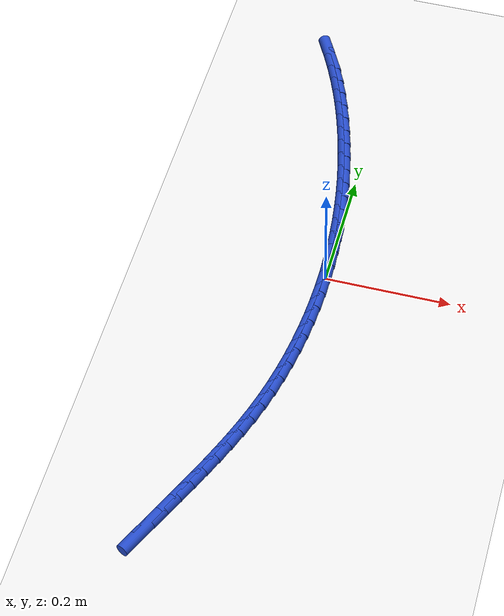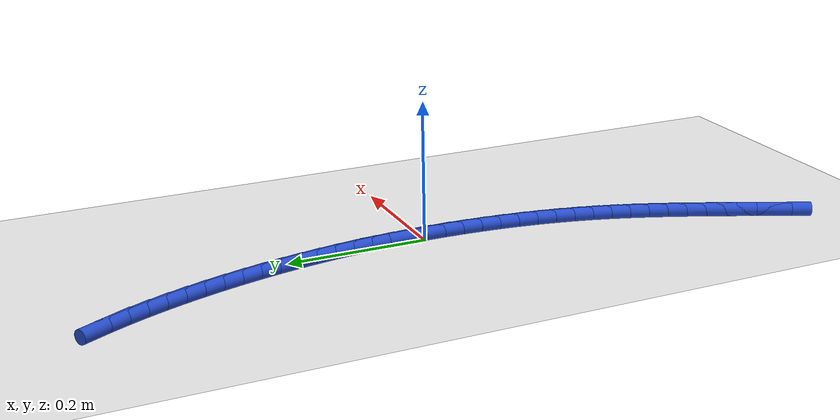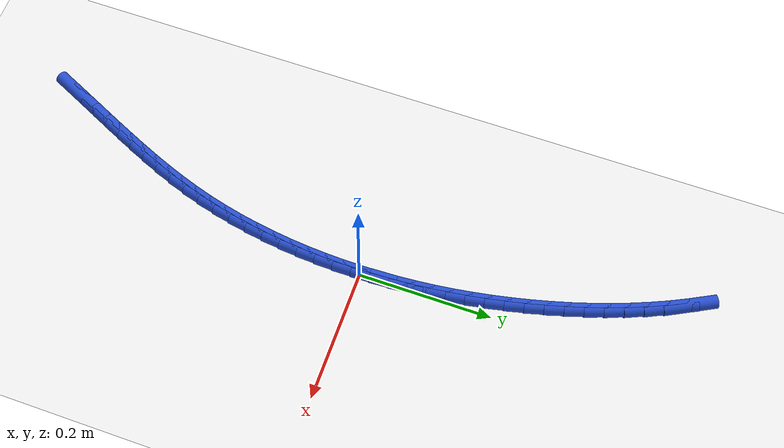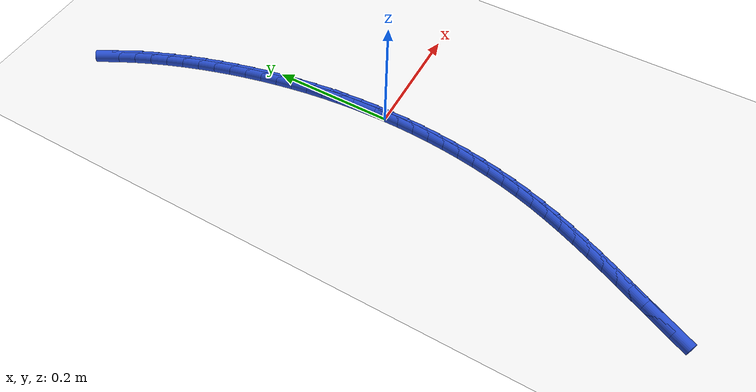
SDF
<sdf version="1.6">
 <world name="default">
  <model name="ground_plane">
   <static>1</static>
   <link name="link">
    <collision name="collision">
     <geometry><plane><normal>0 0 1</normal><size>100 100</size></plane></geometry>
     <surface><friction><ode><mu>100</mu><mu2>50</mu2></ode></friction></surface>
    </collision>
    <visual name="visual">
     <cast_shadows>0</cast_shadows>
     <geometry><plane><normal>0 0 1</normal><size>100 100</size></plane></geometry>
     <material>
      <script><uri>file://media/materials/scripts/gazebo.material</uri><name>Gazebo/WhiteGlow</name></script>
     </material>
    </visual>
   </link>
  </model>
  <model name="line">
   <link name="link_0">
    <pose>8.673617379884035e-18 -1.3877787807814457e-17 0.01 0 1.57 -1.5496870519016304</pose>
    <collision name="collision">
     <geometry><cylinder><radius>0.01</radius><length>0.08</length></cylinder></geometry>
    </collision>
    <visual name="visual">
     <material>
      <script><name>Gazebo/Blue</name><uri>file://media/materials/scripts/gazebo.material</uri></script>
     </material>
     <geometry><cylinder><radius>0.01</radius><length>0.08</length></cylinder></geometry>
    </visual>
   </link>
   <link name="link_1">
    <pose>-0.0005935820550612413 0.02811531369161037 0.01 0 1.57 -1.5225756263421197</pose>
    <collision name="collision">
     <geometry><cylinder><radius>0.01</radius><length>0.08</length></cylinder></geometry>
    </collision>
    <visual name="visual">
     <material>
      <script><name>Gazebo/Blue</name><uri>file://media/materials/scripts/gazebo.material</uri></script>
     </material>
     <geometry><cylinder><radius>0.01</radius><length>0.08</length></cylinder></geometry>
    </visual>
   </link>
   <link name="link_2">
    <pose>-0.0019466442927246717 0.05615334160720155 0.01 0 1.57 -1.4957126452156062</pose>
    <collision name="collision">
     <geometry><cylinder><radius>0.01</radius><length>0.08</length></cylinder></geometry>
    </collision>
    <visual name="visual">
     <material>
      <script><name>Gazebo/Blue</name><uri>file://media/materials/scripts/gazebo.material</uri></script>
     </material>
     <geometry><cylinder><radius>0.01</radius><length>0.08</length></cylinder></geometry>
    </visual>
   </link>
   <link name="link_3">
    <pose>-0.004049898525523837 0.08411281689671175 0.01 0 1.57 -1.4691324945821218</pose>
    <collision name="collision">
     <geometry><cylinder><radius>0.01</radius><length>0.08</length></cylinder></geometry>
    </collision>
    <visual name="visual">
     <material>
      <script><name>Gazebo/Blue</name><uri>file://media/materials/scripts/gazebo.material</uri></script>
     </material>
     <geometry><cylinder><radius>0.01</radius><length>0.08</length></cylinder></geometry>
    </visual>
   </link>
   <link name="link_4">
    <pose>-0.006894056565992287 0.11199247271007928 0.01 0 1.57 -1.4428672444223662</pose>
    <collision name="collision">
     <geometry><cylinder><radius>0.01</radius><length>0.08</length></cylinder></geometry>
    </collision>
    <visual name="visual">
     <material>
      <script><name>Gazebo/Blue</name><uri>file://media/materials/scripts/gazebo.material</uri></script>
     </material>
     <geometry><cylinder><radius>0.01</radius><length>0.08</length></cylinder></geometry>
    </visual>
   </link>
   <link name="link_5">
    <pose>-0.010469830226663578 0.13979104219724242 0.01 0 1.57 -1.4169464753337753</pose>
    <collision name="collision">
     <geometry><cylinder><radius>0.01</radius><length>0.08</length></cylinder></geometry>
    </collision>
    <visual name="visual">
     <material>
      <script><name>Gazebo/Blue</name><uri>file://media/materials/scripts/gazebo.material</uri></script>
     </material>
     <geometry><cylinder><radius>0.01</radius><length>0.08</length></cylinder></geometry>
    </visual>
   </link>
   <link name="link_6">
    <pose>-0.01476793132007127 0.1675072585081394 0.01 0 1.57 -1.3913971503743705</pose>
    <collision name="collision">
     <geometry><cylinder><radius>0.01</radius><length>0.08</length></cylinder></geometry>
    </collision>
    <visual name="visual">
     <material>
      <script><name>Gazebo/Blue</name><uri>file://media/materials/scripts/gazebo.material</uri></script>
     </material>
     <geometry><cylinder><radius>0.01</radius><length>0.08</length></cylinder></geometry>
    </visual>
   </link>
   <link name="link_7">
    <pose>-0.0197790716587489 0.19513985479270862 0.01 0 1.57 -1.3662435314455648</pose>
    <collision name="collision">
     <geometry><cylinder><radius>0.01</radius><length>0.08</length></cylinder></geometry>
    </collision>
    <visual name="visual">
     <material>
      <script><name>Gazebo/Blue</name><uri>file://media/materials/scripts/gazebo.material</uri></script>
     </material>
     <geometry><cylinder><radius>0.01</radius><length>0.08</length></cylinder></geometry>
    </visual>
   </link>
   <link name="link_8">
    <pose>-0.02549396305523003 0.22268756420088814 0.01 0 1.57 -1.341507138381807</pose>
    <collision name="collision">
     <geometry><cylinder><radius>0.01</radius><length>0.08</length></cylinder></geometry>
    </collision>
    <visual name="visual">
     <material>
      <script><name>Gazebo/Blue</name><uri>file://media/materials/scripts/gazebo.material</uri></script>
     </material>
     <geometry><cylinder><radius>0.01</radius><length>0.08</length></cylinder></geometry>
    </visual>
   </link>
   <link name="link_9">
    <pose>-0.0319033173220482 0.25014911988261634 0.01 0 1.57 -1.3171224972471922</pose>
    <collision name="collision">
     <geometry><cylinder><radius>0.01</radius><length>0.08</length></cylinder></geometry>
    </collision>
    <visual name="visual">
     <material>
      <script><name>Gazebo/Blue</name><uri>file://media/materials/scripts/gazebo.material</uri></script>
     </material>
     <geometry><cylinder><radius>0.01</radius><length>0.08</length></cylinder></geometry>
    </visual>
   </link>
   <link name="link_10">
    <pose>-0.03899957139405696 0.2775204156260706 0.01 0 1.57 -1.2921599520089047</pose>
    <collision name="collision">
     <geometry><cylinder><radius>0.01</radius><length>0.08</length></cylinder></geometry>
    </collision>
    <visual name="visual">
     <material>
      <script><name>Gazebo/Blue</name><uri>file://media/materials/scripts/gazebo.material</uri></script>
     </material>
     <geometry><cylinder><radius>0.01</radius><length>0.08</length></cylinder></geometry>
    </visual>
   </link>
   <link name="link_11">
    <pose>-0.04679403079307807 0.304766289598792 0.01 0 1.57 -1.2659794614986586</pose>
    <collision name="collision">
     <geometry><cylinder><radius>0.01</radius><length>0.08</length></cylinder></geometry>
    </collision>
    <visual name="visual">
     <material>
      <script><name>Gazebo/Blue</name><uri>file://media/materials/scripts/gazebo.material</uri></script>
     </material>
     <geometry><cylinder><radius>0.01</radius><length>0.08</length></cylinder></geometry>
    </visual>
   </link>
   <link name="link_12">
    <pose>-0.05530963386480234 0.33183243361859144 0.01 0 1.57 -1.2384869728042407</pose>
    <collision name="collision">
     <geometry><cylinder><radius>0.01</radius><length>0.08</length></cylinder></geometry>
    </collision>
    <visual name="visual">
     <material>
      <script><name>Gazebo/Blue</name><uri>file://media/materials/scripts/gazebo.material</uri></script>
     </material>
     <geometry><cylinder><radius>0.01</radius><length>0.08</length></cylinder></geometry>
    </visual>
   </link>
   <link name="link_13">
    <pose>-0.06456948993866612 0.3586642580828249 0.01 0 1.57 -1.209596038206299</pose>
    <collision name="collision">
     <geometry><cylinder><radius>0.01</radius><length>0.08</length></cylinder></geometry>
    </collision>
    <visual name="visual">
     <material>
      <script><name>Gazebo/Blue</name><uri>file://media/materials/scripts/gazebo.material</uri></script>
     </material>
     <geometry><cylinder><radius>0.01</radius><length>0.08</length></cylinder></geometry>
    </visual>
   </link>
   <link name="link_14">
    <pose>-0.07459670834410573 0.3852071733888478 0.01 0 1.57 -1.1792205598598826</pose>
    <collision name="collision">
     <geometry><cylinder><radius>0.01</radius><length>0.08</length></cylinder></geometry>
    </collision>
    <visual name="visual">
     <material>
      <script><name>Gazebo/Blue</name><uri>file://media/materials/scripts/gazebo.material</uri></script>
     </material>
     <geometry><cylinder><radius>0.01</radius><length>0.08</length></cylinder></geometry>
    </visual>
   </link>
   <link name="link_15">
    <pose>-0.08541439841055748 0.41140658993401624 0.01 0 1.57 -1.1472762783633381</pose>
    <collision name="collision">
     <geometry><cylinder><radius>0.01</radius><length>0.08</length></cylinder></geometry>
    </collision>
    <visual name="visual">
     <material>
      <script><name>Gazebo/Blue</name><uri>file://media/materials/scripts/gazebo.material</uri></script>
     </material>
     <geometry><cylinder><radius>0.01</radius><length>0.08</length></cylinder></geometry>
    </visual>
   </link>
   <link name="link_16">
    <pose>-0.09704566946745773 0.43720791811568566 0.01 0 1.57 -1.1136827141171879</pose>
    <collision name="collision">
     <geometry><cylinder><radius>0.01</radius><length>0.08</length></cylinder></geometry>
    </collision>
    <visual name="visual">
     <material>
      <script><name>Gazebo/Blue</name><uri>file://media/materials/scripts/gazebo.material</uri></script>
     </material>
     <geometry><cylinder><radius>0.01</radius><length>0.08</length></cylinder></geometry>
    </visual>
   </link>
   <link name="link_17">
    <pose>-0.10951363084424277 0.4625565683312117 0.01 0 1.57 -1.0783656160031785</pose>
    <collision name="collision">
     <geometry><cylinder><radius>0.01</radius><length>0.08</length></cylinder></geometry>
    </collision>
    <visual name="visual">
     <material>
      <script><name>Gazebo/Blue</name><uri>file://media/materials/scripts/gazebo.material</uri></script>
     </material>
     <geometry><cylinder><radius>0.01</radius><length>0.08</length></cylinder></geometry>
    </visual>
   </link>
   <link name="link_221">
    <pose>-0.1384175217486767 -0.5096117216211857 0.01 0 1.57 1.1364855579545485</pose>
    <collision name="collision">
     <geometry><cylinder><radius>0.01</radius><length>0.08</length></cylinder></geometry>
    </collision>
    <visual name="visual">
     <material>
      <script><name>Gazebo/Blue</name><uri>file://media/materials/scripts/gazebo.material</uri></script>
     </material>
     <geometry><cylinder><radius>0.01</radius><length>0.08</length></cylinder></geometry>
    </visual>
   </link>
   <link name="link_222">
    <pose>-0.12631542916933602 -0.48352112688109217 0.01 0 1.57 1.134297721019865</pose>
    <collision name="collision">
     <geometry><cylinder><radius>0.01</radius><length>0.08</length></cylinder></geometry>
    </collision>
    <visual name="visual">
     <material>
      <script><name>Gazebo/Blue</name><uri>file://media/materials/scripts/gazebo.material</uri></script>
     </material>
     <geometry><cylinder><radius>0.01</radius><length>0.08</length></cylinder></geometry>
    </visual>
   </link>
   <link name="link_223">
    <pose>-0.11424906229188209 -0.45765595009288035 0.01 0 1.57 1.1364454552640093</pose>
    <collision name="collision">
     <geometry><cylinder><radius>0.01</radius><length>0.08</length></cylinder></geometry>
    </collision>
    <visual name="visual">
     <material>
      <script><name>Gazebo/Blue</name><uri>file://media/materials/scripts/gazebo.material</uri></script>
     </material>
     <geometry><cylinder><radius>0.01</radius><length>0.08</length></cylinder></geometry>
    </visual>
   </link>
   <link name="link_224">
    <pose>-0.1023225786481434 -0.43194664722454107 0.01 0 1.57 1.1430992582188602</pose>
    <collision name="collision">
     <geometry><cylinder><radius>0.01</radius><length>0.08</length></cylinder></geometry>
    </collision>
    <visual name="visual">
     <material>
      <script><name>Gazebo/Blue</name><uri>file://media/materials/scripts/gazebo.material</uri></script>
     </material>
     <geometry><cylinder><radius>0.01</radius><length>0.08</length></cylinder></geometry>
    </visual>
   </link>
   <link name="link_225">
    <pose>-0.09064189243032862 -0.4063219276045074 0.01 0 1.57 1.1543301673574944</pose>
    <collision name="collision">
     <geometry><cylinder><radius>0.01</radius><length>0.08</length></cylinder></geometry>
    </collision>
    <visual name="visual">
     <material>
      <script><name>Gazebo/Blue</name><uri>file://media/materials/scripts/gazebo.material</uri></script>
     </material>
     <geometry><cylinder><radius>0.01</radius><length>0.08</length></cylinder></geometry>
    </visual>
   </link>
   <link name="link_226">
    <pose>-0.07931291783064688 -0.38071050056121314 0.01 0 1.57 1.17018540834615</pose>
    <collision name="collision">
     <geometry><cylinder><radius>0.01</radius><length>0.08</length></cylinder></geometry>
    </collision>
    <visual name="visual">
     <material>
      <script><name>Gazebo/Blue</name><uri>file://media/materials/scripts/gazebo.material</uri></script>
     </material>
     <geometry><cylinder><radius>0.01</radius><length>0.08</length></cylinder></geometry>
    </visual>
   </link>
   <link name="link_227">
    <pose>-0.06844156904130724 -0.3550410754230922 0.01 0 1.57 1.1906801922421906</pose>
    <collision name="collision">
     <geometry><cylinder><radius>0.01</radius><length>0.08</length></cylinder></geometry>
    </collision>
    <visual name="visual">
     <material>
      <script><name>Gazebo/Blue</name><uri>file://media/materials/scripts/gazebo.material</uri></script>
     </material>
     <geometry><cylinder><radius>0.01</radius><length>0.08</length></cylinder></geometry>
    </visual>
   </link>
   <link name="link_228">
    <pose>-0.058133760254518774 -0.3292423615185787 0.01 0 1.57 1.2157867527497863</pose>
    <collision name="collision">
     <geometry><cylinder><radius>0.01</radius><length>0.08</length></cylinder></geometry>
    </collision>
    <visual name="visual">
     <material>
      <script><name>Gazebo/Blue</name><uri>file://media/materials/scripts/gazebo.material</uri></script>
     </material>
     <geometry><cylinder><radius>0.01</radius><length>0.08</length></cylinder></geometry>
    </visual>
   </link>
   <link name="link_229">
    <pose>-0.048495405662490526 -0.3032430681761062 0.01 0 1.57 1.2454211539837494</pose>
    <collision name="collision">
     <geometry><cylinder><radius>0.01</radius><length>0.08</length></cylinder></geometry>
    </collision>
    <visual name="visual">
     <material>
      <script><name>Gazebo/Blue</name><uri>file://media/materials/scripts/gazebo.material</uri></script>
     </material>
     <geometry><cylinder><radius>0.01</radius><length>0.08</length></cylinder></geometry>
    </visual>
   </link>
   <link name="link_230">
    <pose>-0.03963241945743134 -0.27697190472410793 0.01 0 1.57 1.2793994291172643</pose>
    <collision name="collision">
     <geometry><cylinder><radius>0.01</radius><length>0.08</length></cylinder></geometry>
    </collision>
    <visual name="visual">
     <material>
      <script><name>Gazebo/Blue</name><uri>file://media/materials/scripts/gazebo.material</uri></script>
     </material>
     <geometry><cylinder><radius>0.01</radius><length>0.08</length></cylinder></geometry>
    </visual>
   </link>
   <link name="link_231">
    <pose>-0.03165005209391104 -0.2503582218126071 0.01 0 1.57 1.315525301232972</pose>
    <collision name="collision">
     <geometry><cylinder><radius>0.01</radius><length>0.08</length></cylinder></geometry>
    </collision>
    <visual name="visual">
     <material>
      <script><name>Gazebo/Blue</name><uri>file://media/materials/scripts/gazebo.material</uri></script>
     </material>
     <geometry><cylinder><radius>0.01</radius><length>0.08</length></cylinder></geometry>
    </visual>
   </link>
   <link name="link_232">
    <pose>-0.024608396850677942 -0.22337500219858214 0.01 0 1.57 1.3505427306148923</pose>
    <collision name="collision">
     <geometry><cylinder><radius>0.01</radius><length>0.08</length></cylinder></geometry>
    </collision>
    <visual name="visual">
     <material>
      <script><name>Gazebo/Blue</name><uri>file://media/materials/scripts/gazebo.material</uri></script>
     </material>
     <geometry><cylinder><radius>0.01</radius><length>0.08</length></cylinder></geometry>
    </visual>
   </link>
   <link name="link_233">
    <pose>-0.01849430149801215 -0.19606600046655973 0.01 0 1.57 1.3842481415520944</pose>
    <collision name="collision">
     <geometry><cylinder><radius>0.01</radius><length>0.08</length></cylinder></geometry>
    </collision>
    <visual name="visual">
     <material>
      <script><name>Gazebo/Blue</name><uri>file://media/materials/scripts/gazebo.material</uri></script>
     </material>
     <geometry><cylinder><radius>0.01</radius><length>0.08</length></cylinder></geometry>
    </visual>
   </link>
   <link name="link_234">
    <pose>-0.01328791709585133 -0.1684814417470342 0.01 0 1.57 1.416739494396399</pose>
    <collision name="collision">
     <geometry><cylinder><radius>0.01</radius><length>0.08</length></cylinder></geometry>
    </collision>
    <visual name="visual">
     <material>
      <script><name>Gazebo/Blue</name><uri>file://media/materials/scripts/gazebo.material</uri></script>
     </material>
     <geometry><cylinder><radius>0.01</radius><length>0.08</length></cylinder></geometry>
    </visual>
   </link>
   <link name="link_235">
    <pose>-0.008969394704133141 -0.14067155117049993 0.01 0 1.57 1.448116964846347</pose>
    <collision name="collision">
     <geometry><cylinder><radius>0.01</radius><length>0.08</length></cylinder></geometry>
    </collision>
    <visual name="visual">
     <material>
      <script><name>Gazebo/Blue</name><uri>file://media/materials/scripts/gazebo.material</uri></script>
     </material>
     <geometry><cylinder><radius>0.01</radius><length>0.08</length></cylinder></geometry>
    </visual>
   </link>
   <link name="link_236">
    <pose>-0.005518885382795252 -0.11268655386745136 0.01 0 1.57 1.4784818548947471</pose>
    <collision name="collision">
     <geometry><cylinder><radius>0.01</radius><length>0.08</length></cylinder></geometry>
    </collision>
    <visual name="visual">
     <material>
      <script><name>Gazebo/Blue</name><uri>file://media/materials/scripts/gazebo.material</uri></script>
     </material>
     <geometry><cylinder><radius>0.01</radius><length>0.08</length></cylinder></geometry>
    </visual>
   </link>
   <link name="link_237">
    <pose>-0.0029165401917753235 -0.0845766749683827 0.01 0 1.57 1.5079358713633182</pose>
    <collision name="collision">
     <geometry><cylinder><radius>0.01</radius><length>0.08</length></cylinder></geometry>
    </collision>
    <visual name="visual">
     <material>
      <script><name>Gazebo/Blue</name><uri>file://media/materials/scripts/gazebo.material</uri></script>
     </material>
     <geometry><cylinder><radius>0.01</radius><length>0.08</length></cylinder></geometry>
    </visual>
   </link>
   <link name="link_238">
    <pose>-0.0011425101910109915 -0.05639213960378769 0.01 0 1.57 1.5365807196167256</pose>
    <collision name="collision">
     <geometry><cylinder><radius>0.01</radius><length>0.08</length></cylinder></geometry>
    </collision>
    <visual name="visual">
     <material>
      <script><name>Gazebo/Blue</name><uri>file://media/materials/scripts/gazebo.material</uri></script>
     </material>
     <geometry><cylinder><radius>0.01</radius><length>0.08</length></cylinder></geometry>
    </visual>
   </link>
   <link name="link_239">
    <pose>-0.00017694644044001246 -0.028183172904162196 0.01 0 1.57 1.5645179664382174</pose>
    <collision name="collision">
     <geometry><cylinder><radius>0.01</radius><length>0.08</length></cylinder></geometry>
    </collision>
    <visual name="visual">
     <material>
      <script><name>Gazebo/Blue</name><uri>file://media/materials/scripts/gazebo.material</uri></script>
     </material>
     <geometry><cylinder><radius>0.01</radius><length>0.08</length></cylinder></geometry>
    </visual>
   </link>
   <link name="link_240">
    <pose>1.1275702593849246e-17 1.8735013540549517e-16 0.01 0 1.57 -1.5497435196840692</pose>
    <collision name="collision">
     <geometry><cylinder><radius>0.01</radius><length>0.08</length></cylinder></geometry>
    </collision>
    <visual name="visual">
     <material>
      <script><name>Gazebo/Blue</name><uri>file://media/materials/scripts/gazebo.material</uri></script>
     </material>
     <geometry><cylinder><radius>0.01</radius><length>0.08</length></cylinder></geometry>
    </visual>
   </link>
   <link name="link_241">
    <pose>-0.0005918219296285913 0.02810715397820504 0.01 0 1.57 -1.5229166590630825</pose>
    <collision name="collision">
     <geometry><cylinder><radius>0.01</radius><length>0.08</length></cylinder></geometry>
    </collision>
    <visual name="visual">
     <material>
      <script><name>Gazebo/Blue</name><uri>file://media/materials/scripts/gazebo.material</uri></script>
     </material>
     <geometry><cylinder><radius>0.01</radius><length>0.08</length></cylinder></geometry>
    </visual>
   </link>
   <link name="link_242">
    <pose>-0.0019325632892634838 0.05608806389995806 0.01 0 1.57 -1.536354078037364</pose>
    <collision name="collision">
     <geometry><cylinder><radius>0.01</radius><length>0.08</length></cylinder></geometry>
    </collision>
    <visual name="visual">
     <material>
      <script><name>Gazebo/Blue</name><uri>file://media/materials/scripts/gazebo.material</uri></script>
     </material>
     <geometry><cylinder><radius>0.01</radius><length>0.08</length></cylinder></geometry>
    </visual>
   </link>
  </model>
 </world>
</sdf>
